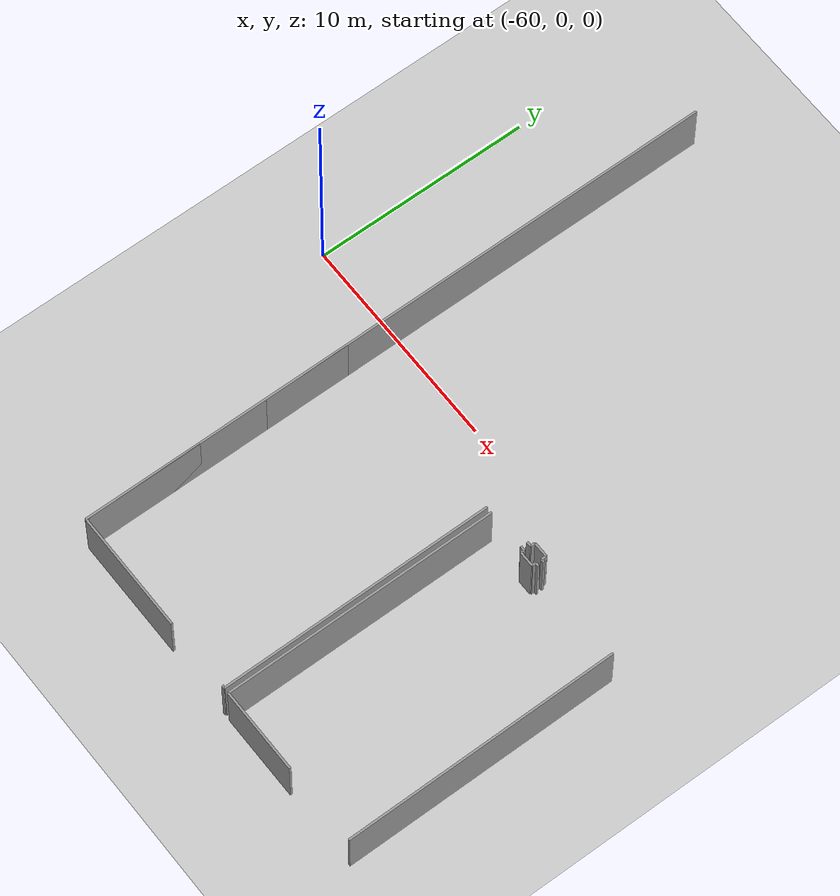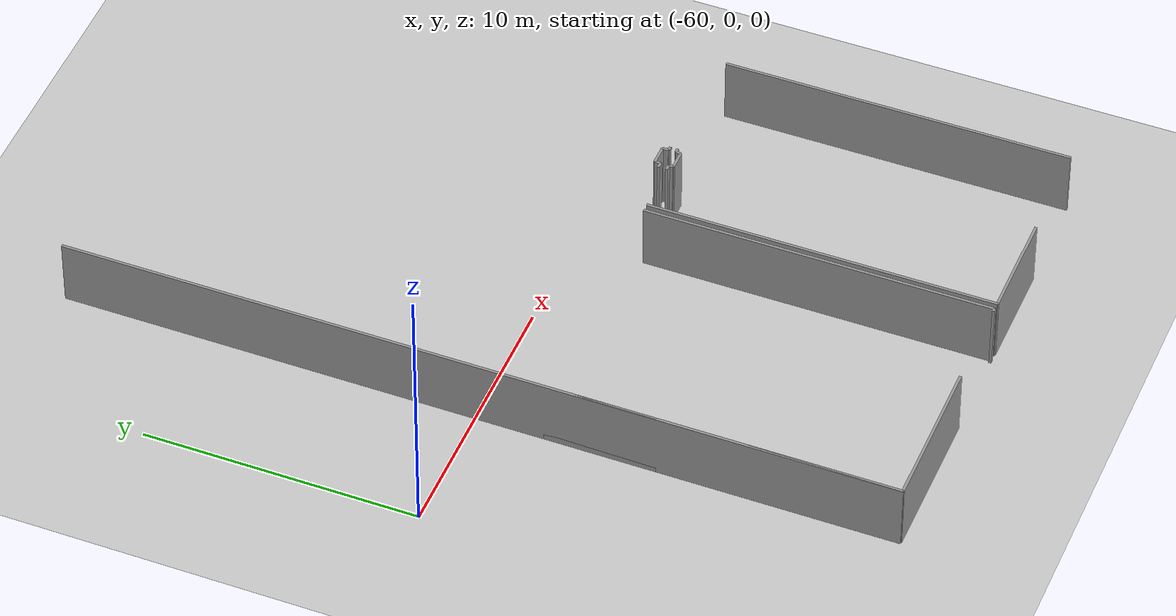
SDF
<sdf version="1.6">
 <world name="default">
  <model name="ground_plane">
   <static>1</static>
   <link name="link">
    <collision name="collision">
     <geometry><plane><normal>0 0 1</normal><size>100 100</size></plane></geometry>
     <surface><friction><ode><mu>100</mu><mu2>50</mu2></ode></friction></surface>
    </collision>
    <visual name="visual">
     <cast_shadows>0</cast_shadows>
     <geometry><plane><normal>0 0 1</normal><size>100 100</size></plane></geometry>
     <material>
      <script><uri>file://media/materials/scripts/gazebo.material</uri><name>Gazebo/Grey</name></script>
     </material>
    </visual>
   </link>
  </model>
  <model name="50056459">
   <static>1</static>
   <link name="Wall_23">
    <collision name="Wall_23_Collision">
     <geometry><box><size>0.219028178915 0.1 2.5</size></box></geometry>
     <pose>0.109514089458 0 1.25 0 0 0</pose>
    </collision>
    <visual name="Wall_23_Visual">
     <pose>0.109514089458 0 1.25 0 0 0</pose>
     <geometry><box><size>0.219028178915 0.1 2.5</size></box></geometry>
     <material>
      <script><uri>file://media/materials/scripts/gazebo.material</uri><name>Gazebo/Grey</name></script>
      <ambient>1 1 1 1</ambient>
     </material>
    </visual>
    <pose>11.1150109683 -17.3418482726 0 0 0 0.0</pose>
   </link>
   <link name="Wall_24">
    <collision name="Wall_24_Collision">
     <geometry><box><size>0.210897202436 0.1 2.5</size></box></geometry>
     <pose>0.105448601218 0 1.25 0 0 0</pose>
    </collision>
    <visual name="Wall_24_Visual">
     <pose>0.105448601218 0 1.25 0 0 0</pose>
     <geometry><box><size>0.210897202436 0.1 2.5</size></box></geometry>
     <material>
      <script><uri>file://media/materials/scripts/gazebo.material</uri><name>Gazebo/Grey</name></script>
      <ambient>1 1 1 1</ambient>
     </material>
    </visual>
    <pose>11.3340391473 -17.3418482726 0 0 0 1.57079632679</pose>
   </link>
   <link name="Wall_25">
    <collision name="Wall_25_Collision">
     <geometry><box><size>0.707394953713 0.1 2.5</size></box></geometry>
     <pose>0.353697476856 0 1.25 0 0 0</pose>
    </collision>
    <visual name="Wall_25_Visual">
     <pose>0.353697476856 0 1.25 0 0 0</pose>
     <geometry><box><size>0.707394953713 0.1 2.5</size></box></geometry>
     <material>
      <script><uri>file://media/materials/scripts/gazebo.material</uri><name>Gazebo/Grey</name></script>
      <ambient>1 1 1 1</ambient>
     </material>
    </visual>
    <pose>11.3340391473 -17.1309510702 0 0 0 0.0</pose>
   </link>
   <link name="Wall_26">
    <collision name="Wall_26_Collision">
     <geometry><box><size>0.227497946081 0.1 2.5</size></box></geometry>
     <pose>0.113748973041 0 1.25 0 0 0</pose>
    </collision>
    <visual name="Wall_26_Visual">
     <pose>0.113748973041 0 1.25 0 0 0</pose>
     <geometry><box><size>0.227497946081 0.1 2.5</size></box></geometry>
     <material>
      <script><uri>file://media/materials/scripts/gazebo.material</uri><name>Gazebo/Grey</name></script>
      <ambient>1 1 1 1</ambient>
     </material>
    </visual>
    <pose>12.041434101 -17.1309510702 0 0 0 -1.57079632679</pose>
   </link>
   <link name="Wall_27">
    <collision name="Wall_27_Collision">
     <geometry><box><size>0.151608832273 0.1 2.5</size></box></geometry>
     <pose>0.0758044161366 0 1.25 0 0 0</pose>
    </collision>
    <visual name="Wall_27_Visual">
     <pose>0.0758044161366 0 1.25 0 0 0</pose>
     <geometry><box><size>0.151608832273 0.1 2.5</size></box></geometry>
     <material>
      <script><uri>file://media/materials/scripts/gazebo.material</uri><name>Gazebo/Grey</name></script>
      <ambient>1 1 1 1</ambient>
     </material>
    </visual>
    <pose>12.041434101 -17.3584490162 0 0 0 0.0</pose>
   </link>
   <link name="Wall_112">
    <collision name="Wall_112_Collision">
     <geometry><box><size>3.92793922095 0.1 2.5</size></box></geometry>
     <pose>1.96396961048 0 1.25 0 0 0</pose>
    </collision>
    <visual name="Wall_112_Visual">
     <pose>1.96396961048 0 1.25 0 0 0</pose>
     <geometry><box><size>3.92793922095 0.1 2.5</size></box></geometry>
     <material>
      <script><uri>file://media/materials/scripts/gazebo.material</uri><name>Gazebo/Grey</name></script>
      <ambient>1 1 1 1</ambient>
     </material>
    </visual>
    <pose>13.1985736912 -30.304657525 0 0 0 3.14159265359</pose>
   </link>
   <link name="Wall_113">
    <collision name="Wall_113_Collision">
     <geometry><box><size>12.6624713087 0.1 2.5</size></box></geometry>
     <pose>6.33123565433 0 1.25 0 0 0</pose>
    </collision>
    <visual name="Wall_113_Visual">
     <pose>6.33123565433 0 1.25 0 0 0</pose>
     <geometry><box><size>12.6624713087 0.1 2.5</size></box></geometry>
     <material>
      <script><uri>file://media/materials/scripts/gazebo.material</uri><name>Gazebo/Grey</name></script>
      <ambient>1 1 1 1</ambient>
     </material>
    </visual>
    <pose>9.27063447026 -30.304657525 0 0 0 1.57079632679</pose>
   </link>
   <link name="Wall_114">
    <collision name="Wall_114_Collision">
     <geometry><box><size>0.210558411749 0.1 2.5</size></box></geometry>
     <pose>0.105279205875 0 1.25 0 0 0</pose>
    </collision>
    <visual name="Wall_114_Visual">
     <pose>0.105279205875 0 1.25 0 0 0</pose>
     <geometry><box><size>0.210558411749 0.1 2.5</size></box></geometry>
     <material>
      <script><uri>file://media/materials/scripts/gazebo.material</uri><name>Gazebo/Grey</name></script>
      <ambient>1 1 1 1</ambient>
     </material>
    </visual>
    <pose>11.1236501309 -17.6421862163 0 0 0 0.0</pose>
   </link>
   <link name="Wall_115">
    <collision name="Wall_115_Collision">
     <geometry><box><size>0.166854413172 0.1 2.5</size></box></geometry>
     <pose>0.0834272065861 0 1.25 0 0 0</pose>
    </collision>
    <visual name="Wall_115_Visual">
     <pose>0.0834272065861 0 1.25 0 0 0</pose>
     <geometry><box><size>0.166854413172 0.1 2.5</size></box></geometry>
     <material>
      <script><uri>file://media/materials/scripts/gazebo.material</uri><name>Gazebo/Grey</name></script>
      <ambient>1 1 1 1</ambient>
     </material>
    </visual>
    <pose>11.3342085426 -17.6421862163 0 0 0 -1.57079632679</pose>
   </link>
   <link name="Wall_116">
    <collision name="Wall_116_Collision">
     <geometry><box><size>0.70316007013 0.1 2.5</size></box></geometry>
     <pose>0.351580035065 0 1.25 0 0 0</pose>
    </collision>
    <visual name="Wall_116_Visual">
     <pose>0.351580035065 0 1.25 0 0 0</pose>
     <geometry><box><size>0.70316007013 0.1 2.5</size></box></geometry>
     <material>
      <script><uri>file://media/materials/scripts/gazebo.material</uri><name>Gazebo/Grey</name></script>
      <ambient>1 1 1 1</ambient>
     </material>
    </visual>
    <pose>11.3342085426 -17.8090406295 0 0 0 0.0</pose>
   </link>
   <link name="Wall_117">
    <collision name="Wall_117_Collision">
     <geometry><box><size>0.177187529115 0.1 2.5</size></box></geometry>
     <pose>0.0885937645574 0 1.25 0 0 0</pose>
    </collision>
    <visual name="Wall_117_Visual">
     <pose>0.0885937645574 0 1.25 0 0 0</pose>
     <geometry><box><size>0.177187529115 0.1 2.5</size></box></geometry>
     <material>
      <script><uri>file://media/materials/scripts/gazebo.material</uri><name>Gazebo/Grey</name></script>
      <ambient>1 1 1 1</ambient>
     </material>
    </visual>
    <pose>12.0373686127 -17.8090406295 0 0 0 1.57079632679</pose>
   </link>
   <link name="Wall_118">
    <collision name="Wall_118_Collision">
     <geometry><box><size>0.166176831799 0.1 2.5</size></box></geometry>
     <pose>0.0830884158994 0 1.25 0 0 0</pose>
    </collision>
    <visual name="Wall_118_Visual">
     <pose>0.0830884158994 0 1.25 0 0 0</pose>
     <geometry><box><size>0.166176831799 0.1 2.5</size></box></geometry>
     <material>
      <script><uri>file://media/materials/scripts/gazebo.material</uri><name>Gazebo/Grey</name></script>
      <ambient>1 1 1 1</ambient>
     </material>
    </visual>
    <pose>12.0373686127 -17.6318531004 0 0 0 0.0</pose>
   </link>
   <link name="Wall_119">
    <collision name="Wall_119_Collision">
     <geometry><box><size>12.6728538775 0.1 2.5</size></box></geometry>
     <pose>6.33642693876 0 1.25 0 0 0</pose>
    </collision>
    <visual name="Wall_119_Visual">
     <pose>6.33642693876 0 1.25 0 0 0</pose>
     <geometry><box><size>12.6728538775 0.1 2.5</size></box></geometry>
     <material>
      <script><uri>file://media/materials/scripts/gazebo.material</uri><name>Gazebo/Grey</name></script>
      <ambient>1 1 1 1</ambient>
     </material>
    </visual>
    <pose>16.8275301312 -17.6318531004 0 0 0 -1.5680026646</pose>
   </link>
   <link name="Wall_120">
    <collision name="Wall_120_Collision">
     <geometry><box><size>0.133652925881 0.1 2.5</size></box></geometry>
     <pose>0.0668264629405 0 1.25 0 0 0</pose>
    </collision>
    <visual name="Wall_120_Visual">
     <pose>0.0668264629405 0 1.25 0 0 0</pose>
     <geometry><box><size>0.133652925881 0.1 2.5</size></box></geometry>
     <material>
      <script><uri>file://media/materials/scripts/gazebo.material</uri><name>Gazebo/Grey</name></script>
      <ambient>1 1 1 1</ambient>
     </material>
    </visual>
    <pose>9.01061261826 -30.2934774323 0 0 0 3.14159265359</pose>
   </link>
   <link name="Wall_121">
    <collision name="Wall_121_Collision">
     <geometry><box><size>5.61355840328 0.1 2.5</size></box></geometry>
     <pose>2.80677920164 0 1.25 0 0 0</pose>
    </collision>
    <visual name="Wall_121_Visual">
     <pose>2.80677920164 0 1.25 0 0 0</pose>
     <geometry><box><size>5.61355840328 0.1 2.5</size></box></geometry>
     <material>
      <script><uri>file://media/materials/scripts/gazebo.material</uri><name>Gazebo/Grey</name></script>
      <ambient>1 1 1 1</ambient>
     </material>
    </visual>
    <pose>5.61355840328 -30.2934774323 0 0 0 3.14159265359</pose>
   </link>
   <link name="Wall_122">
    <collision name="Wall_122_Collision">
     <geometry><box><size>5.43420261377 0.1 2.5</size></box></geometry>
     <pose>2.71710130689 0 1.25 0 0 0</pose>
    </collision>
    <visual name="Wall_122_Visual">
     <pose>2.71710130689 0 1.25 0 0 0</pose>
     <geometry><box><size>5.43420261377 0.1 2.5</size></box></geometry>
     <material>
      <script><uri>file://media/materials/scripts/gazebo.material</uri><name>Gazebo/Grey</name></script>
      <ambient>1 1 1 1</ambient>
     </material>
    </visual>
    <pose>0.0 -30.2934774323 0 0 0 1.57079632679</pose>
   </link>
   <link name="Wall_123">
    <collision name="Wall_123_Collision">
     <geometry><box><size>4.01636359016 0.1 2.5</size></box></geometry>
     <pose>2.00818179508 0 1.25 0 0 0</pose>
    </collision>
    <visual name="Wall_123_Visual">
     <pose>2.00818179508 0 1.25 0 0 0</pose>
     <geometry><box><size>4.01636359016 0.1 2.5</size></box></geometry>
     <material>
      <script><uri>file://media/materials/scripts/gazebo.material</uri><name>Gazebo/Grey</name></script>
      <ambient>1 1 1 1</ambient>
     </material>
    </visual>
    <pose>0.0 -21.6570252484 0 0 0 1.57079632679</pose>
   </link>
   <link name="Wall_124">
    <collision name="Wall_124_Collision">
     <geometry><box><size>12.6528352334 0.1 2.5</size></box></geometry>
     <pose>6.32641761672 0 1.25 0 0 0</pose>
    </collision>
    <visual name="Wall_124_Visual">
     <pose>6.32641761672 0 1.25 0 0 0</pose>
     <geometry><box><size>12.6528352334 0.1 2.5</size></box></geometry>
     <material>
      <script><uri>file://media/materials/scripts/gazebo.material</uri><name>Gazebo/Grey</name></script>
      <ambient>1 1 1 1</ambient>
     </material>
    </visual>
    <pose>8.98842182828 -17.6406616582 0 0 0 -1.56904250633</pose>
   </link>
   <link name="Wall_306">
    <collision name="Wall_306_Collision">
     <geometry><box><size>30.3156682223 0.1 2.5</size></box></geometry>
     <pose>15.1578341111 0 1.25 0 0 0</pose>
    </collision>
    <visual name="Wall_306_Visual">
     <pose>15.1578341111 0 1.25 0 0 0</pose>
     <geometry><box><size>30.3156682223 0.1 2.5</size></box></geometry>
     <material>
      <script><uri>file://media/materials/scripts/gazebo.material</uri><name>Gazebo/Grey</name></script>
      <ambient>1 1 1 1</ambient>
     </material>
    </visual>
    <pose>0.0 -30.3156682223 0 0 0 1.57079632679</pose>
   </link>
   <pose>-55.1 15.1656682223 0 0 0 0</pose>
  </model>
 </world>
</sdf>
